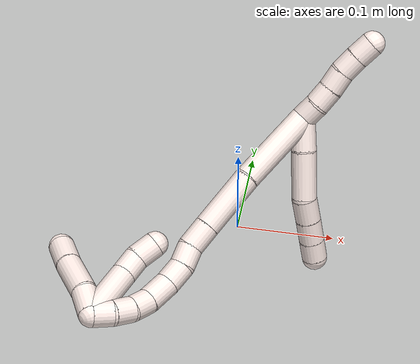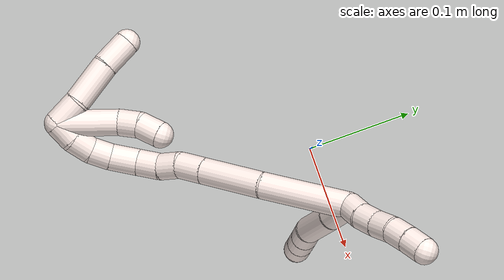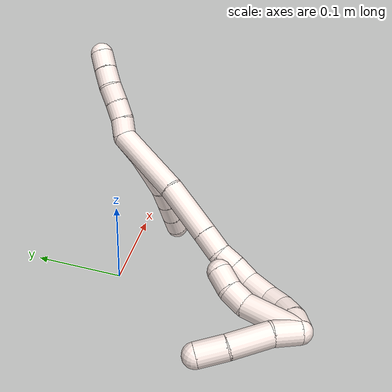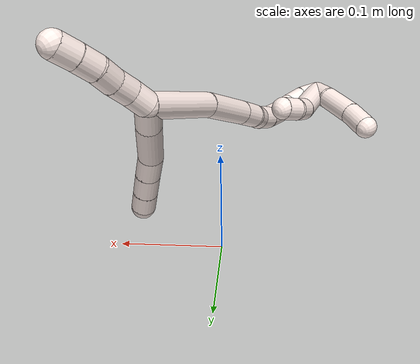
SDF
<sdf version="1.7">
 <world name="default">
  <model name="11">
   <static>0</static>
   <link name="11">
    <collision name="collision-cylinder-e_1_2_8">
     <pose>-0.011091 -0.010823 0.003733 1.2387 -0.769506 -0.562095</pose>
     <geometry><cylinder><radius>0.0125</radius><length>0.03188</length></cylinder></geometry>
     <surface>
      <friction><ode><mu>1.16</mu><mu2>1.16</mu2><slip1>0</slip1><slip2>0</slip2></ode></friction>
      <contact><ode><kp>1e+06</kp><kd>1</kd><max_vel>0</max_vel><min_depth>0.001</min_depth></ode></contact>
     </surface>
    </collision>
    <visual name="visual-cylinder-e_1_2_8">
     <pose>-0.011091 -0.010823 0.003733 1.2387 -0.769506 -0.562095</pose>
     <geometry><cylinder><radius>0.0125</radius><length>0.03188</length></cylinder></geometry>
     <material><ambient>1 0.933333 0.909804 1</ambient></material>
    </visual>
    <collision name="collision-cylinder-e_2_8_9">
     <pose>-0.040822 -0.036573 0.011902 1.28186 -0.874857 -0.671312</pose>
     <geometry><cylinder><radius>0.0125</radius><length>0.048578</length></cylinder></geometry>
     <surface>
      <friction><ode><mu>1.16</mu><mu2>1.16</mu2><slip1>0</slip1><slip2>0</slip2></ode></friction>
      <contact><ode><kp>1e+06</kp><kd>1</kd><max_vel>0</max_vel><min_depth>0.001</min_depth></ode></contact>
     </surface>
    </collision>
    <visual name="visual-cylinder-e_2_8_9">
     <pose>-0.040822 -0.036573 0.011902 1.28186 -0.874857 -0.671312</pose>
     <geometry><cylinder><radius>0.0125</radius><length>0.048578</length></cylinder></geometry>
     <material><ambient>1 0.933333 0.909804 1</ambient></material>
    </visual>
    <collision name="collision-cylinder-e_3_9_10">
     <pose>-0.069499 -0.058673 0.015293 1.71557 -0.945217 -1.06783</pose>
     <geometry><cylinder><radius>0.0125</radius><length>0.024762</length></cylinder></geometry>
     <surface>
      <friction><ode><mu>1.16</mu><mu2>1.16</mu2><slip1>0</slip1><slip2>0</slip2></ode></friction>
      <contact><ode><kp>1e+06</kp><kd>1</kd><max_vel>0</max_vel><min_depth>0.001</min_depth></ode></contact>
     </surface>
    </collision>
    <visual name="visual-cylinder-e_3_9_10">
     <pose>-0.069499 -0.058673 0.015293 1.71557 -0.945217 -1.06783</pose>
     <geometry><cylinder><radius>0.0125</radius><length>0.024762</length></cylinder></geometry>
     <material><ambient>1 0.933333 0.909804 1</ambient></material>
    </visual>
    <collision name="collision-cylinder-e_4_10_11">
     <pose>-0.089376 -0.0726 0.013245 1.71817 -0.964319 -1.09079</pose>
     <geometry><cylinder><radius>0.0125</radius><length>0.023953</length></cylinder></geometry>
     <surface>
      <friction><ode><mu>1.16</mu><mu2>1.16</mu2><slip1>0</slip1><slip2>0</slip2></ode></friction>
      <contact><ode><kp>1e+06</kp><kd>1</kd><max_vel>0</max_vel><min_depth>0.001</min_depth></ode></contact>
     </surface>
    </collision>
    <visual name="visual-cylinder-e_4_10_11">
     <pose>-0.089376 -0.0726 0.013245 1.71817 -0.964319 -1.09079</pose>
     <geometry><cylinder><radius>0.0125</radius><length>0.023953</length></cylinder></geometry>
     <material><ambient>1 0.933333 0.909804 1</ambient></material>
    </visual>
    <collision name="collision-cylinder-e_5_11_6">
     <pose>-0.107767 -0.085237 0.011407 1.71189 -0.963394 -1.08418</pose>
     <geometry><cylinder><radius>0.0125</radius><length>0.020827</length></cylinder></geometry>
     <surface>
      <friction><ode><mu>1.16</mu><mu2>1.16</mu2><slip1>0</slip1><slip2>0</slip2></ode></friction>
      <contact><ode><kp>1e+06</kp><kd>1</kd><max_vel>0</max_vel><min_depth>0.001</min_depth></ode></contact>
     </surface>
    </collision>
    <visual name="visual-cylinder-e_5_11_6">
     <pose>-0.107767 -0.085237 0.011407 1.71189 -0.963394 -1.08418</pose>
     <geometry><cylinder><radius>0.0125</radius><length>0.020827</length></cylinder></geometry>
     <material><ambient>1 0.933333 0.909804 1</ambient></material>
    </visual>
    <collision name="collision-cylinder-e_1_2_12">
     <pose>0.008249 -0.000545 -0.005626 3.04498 0.970026 2.95864</pose>
     <geometry><cylinder><radius>0.0125</radius><length>0.02</length></cylinder></geometry>
     <surface>
      <friction><ode><mu>1.16</mu><mu2>1.16</mu2><slip1>0</slip1><slip2>0</slip2></ode></friction>
      <contact><ode><kp>1e+06</kp><kd>1</kd><max_vel>0</max_vel><min_depth>0.001</min_depth></ode></contact>
     </surface>
    </collision>
    <visual name="visual-cylinder-e_1_2_12">
     <pose>0.008249 -0.000545 -0.005626 3.04498 0.970026 2.95864</pose>
     <geometry><cylinder><radius>0.0125</radius><length>0.02</length></cylinder></geometry>
     <material><ambient>1 0.933333 0.909804 1</ambient></material>
    </visual>
    <collision name="collision-cylinder-e_2_12_13">
     <pose>0.024012 -0.000216 -0.017793 -3.00861 0.850203 -2.84951</pose>
     <geometry><cylinder><radius>0.0125</radius><length>0.02</length></cylinder></geometry>
     <surface>
      <friction><ode><mu>1.16</mu><mu2>1.16</mu2><slip1>0</slip1><slip2>0</slip2></ode></friction>
      <contact><ode><kp>1e+06</kp><kd>1</kd><max_vel>0</max_vel><min_depth>0.001</min_depth></ode></contact>
     </surface>
    </collision>
    <visual name="visual-cylinder-e_2_12_13">
     <pose>0.024012 -0.000216 -0.017793 -3.00861 0.850203 -2.84951</pose>
     <geometry><cylinder><radius>0.0125</radius><length>0.02</length></cylinder></geometry>
     <material><ambient>1 0.933333 0.909804 1</ambient></material>
    </visual>
    <collision name="collision-cylinder-e_3_13_14">
     <pose>0.039323 0.002449 -0.030334 -2.8518 0.894096 -2.55067</pose>
     <geometry><cylinder><radius>0.0125</radius><length>0.02</length></cylinder></geometry>
     <surface>
      <friction><ode><mu>1.16</mu><mu2>1.16</mu2><slip1>0</slip1><slip2>0</slip2></ode></friction>
      <contact><ode><kp>1e+06</kp><kd>1</kd><max_vel>0</max_vel><min_depth>0.001</min_depth></ode></contact>
     </surface>
    </collision>
    <visual name="visual-cylinder-e_3_13_14">
     <pose>0.039323 0.002449 -0.030334 -2.8518 0.894096 -2.55067</pose>
     <geometry><cylinder><radius>0.0125</radius><length>0.02</length></cylinder></geometry>
     <material><ambient>1 0.933333 0.909804 1</ambient></material>
    </visual>
    <collision name="collision-cylinder-e_4_14_15">
     <pose>0.054612 0.004351 -0.042956 -3.12451 0.847023 -3.10369</pose>
     <geometry><cylinder><radius>0.0125</radius><length>0.02</length></cylinder></geometry>
     <surface>
      <friction><ode><mu>1.16</mu><mu2>1.16</mu2><slip1>0</slip1><slip2>0</slip2></ode></friction>
      <contact><ode><kp>1e+06</kp><kd>1</kd><max_vel>0</max_vel><min_depth>0.001</min_depth></ode></contact>
     </surface>
    </collision>
    <visual name="visual-cylinder-e_4_14_15">
     <pose>0.054612 0.004351 -0.042956 -3.12451 0.847023 -3.10369</pose>
     <geometry><cylinder><radius>0.0125</radius><length>0.02</length></cylinder></geometry>
     <material><ambient>1 0.933333 0.909804 1</ambient></material>
    </visual>
    <collision name="collision-cylinder-e_5_15_5">
     <pose>0.069467 0.004017 -0.056331 3.07549 0.827369 2.99125</pose>
     <geometry><cylinder><radius>0.0125</radius><length>0.02</length></cylinder></geometry>
     <surface>
      <friction><ode><mu>1.16</mu><mu2>1.16</mu2><slip1>0</slip1><slip2>0</slip2></ode></friction>
      <contact><ode><kp>1e+06</kp><kd>1</kd><max_vel>0</max_vel><min_depth>0.001</min_depth></ode></contact>
     </surface>
    </collision>
    <visual name="visual-cylinder-e_5_15_5">
     <pose>0.069467 0.004017 -0.056331 3.07549 0.827369 2.99125</pose>
     <geometry><cylinder><radius>0.0125</radius><length>0.02</length></cylinder></geometry>
     <material><ambient>1 0.933333 0.909804 1</ambient></material>
    </visual>
    <collision name="collision-cylinder-e_1_2_16">
     <pose>-0.015906 -0.007923 0.038048 0.205301 -0.388483 -0.040524</pose>
     <geometry><cylinder><radius>0.0125</radius><length>0.083986</length></cylinder></geometry>
     <surface>
      <friction><ode><mu>1.16</mu><mu2>1.16</mu2><slip1>0</slip1><slip2>0</slip2></ode></friction>
      <contact><ode><kp>1e+06</kp><kd>1</kd><max_vel>0</max_vel><min_depth>0.001</min_depth></ode></contact>
     </surface>
    </collision>
    <visual name="visual-cylinder-e_1_2_16">
     <pose>-0.015906 -0.007923 0.038048 0.205301 -0.388483 -0.040524</pose>
     <geometry><cylinder><radius>0.0125</radius><length>0.083986</length></cylinder></geometry>
     <material><ambient>1 0.933333 0.909804 1</ambient></material>
    </visual>
    <collision name="collision-cylinder-e_2_16_17">
     <pose>-0.046976 -0.022102 0.101515 0.241338 -0.525026 -0.065144</pose>
     <geometry><cylinder><radius>0.0125</radius><length>0.060505</length></cylinder></geometry>
     <surface>
      <friction><ode><mu>1.16</mu><mu2>1.16</mu2><slip1>0</slip1><slip2>0</slip2></ode></friction>
      <contact><ode><kp>1e+06</kp><kd>1</kd><max_vel>0</max_vel><min_depth>0.001</min_depth></ode></contact>
     </surface>
    </collision>
    <visual name="visual-cylinder-e_2_16_17">
     <pose>-0.046976 -0.022102 0.101515 0.241338 -0.525026 -0.065144</pose>
     <geometry><cylinder><radius>0.0125</radius><length>0.060505</length></cylinder></geometry>
     <material><ambient>1 0.933333 0.909804 1</ambient></material>
    </visual>
    <collision name="collision-cylinder-e_3_17_18">
     <pose>-0.068783 -0.031047 0.137583 0.247273 -0.543972 -0.06929</pose>
     <geometry><cylinder><radius>0.0125</radius><length>0.025671</length></cylinder></geometry>
     <surface>
      <friction><ode><mu>1.16</mu><mu2>1.16</mu2><slip1>0</slip1><slip2>0</slip2></ode></friction>
      <contact><ode><kp>1e+06</kp><kd>1</kd><max_vel>0</max_vel><min_depth>0.001</min_depth></ode></contact>
     </surface>
    </collision>
    <visual name="visual-cylinder-e_3_17_18">
     <pose>-0.068783 -0.031047 0.137583 0.247273 -0.543972 -0.06929</pose>
     <geometry><cylinder><radius>0.0125</radius><length>0.025671</length></cylinder></geometry>
     <material><ambient>1 0.933333 0.909804 1</ambient></material>
    </visual>
    <collision name="collision-cylinder-e_4_18_19">
     <pose>-0.079877 -0.038647 0.155944 0.567038 -0.452987 -0.134089</pose>
     <geometry><cylinder><radius>0.0125</radius><length>0.02034</length></cylinder></geometry>
     <surface>
      <friction><ode><mu>1.16</mu><mu2>1.16</mu2><slip1>0</slip1><slip2>0</slip2></ode></friction>
      <contact><ode><kp>1e+06</kp><kd>1</kd><max_vel>0</max_vel><min_depth>0.001</min_depth></ode></contact>
     </surface>
    </collision>
    <visual name="visual-cylinder-e_4_18_19">
     <pose>-0.079877 -0.038647 0.155944 0.567038 -0.452987 -0.134089</pose>
     <geometry><cylinder><radius>0.0125</radius><length>0.02034</length></cylinder></geometry>
     <material><ambient>1 0.933333 0.909804 1</ambient></material>
    </visual>
    <collision name="collision-cylinder-e_5_19_20">
     <pose>-0.088612 -0.046062 0.173526 0.248451 -0.398342 -0.050398</pose>
     <geometry><cylinder><radius>0.0125</radius><length>0.022092</length></cylinder></geometry>
     <surface>
      <friction><ode><mu>1.16</mu><mu2>1.16</mu2><slip1>0</slip1><slip2>0</slip2></ode></friction>
      <contact><ode><kp>1e+06</kp><kd>1</kd><max_vel>0</max_vel><min_depth>0.001</min_depth></ode></contact>
     </surface>
    </collision>
    <visual name="visual-cylinder-e_5_19_20">
     <pose>-0.088612 -0.046062 0.173526 0.248451 -0.398342 -0.050398</pose>
     <geometry><cylinder><radius>0.0125</radius><length>0.022092</length></cylinder></geometry>
     <material><ambient>1 0.933333 0.909804 1</ambient></material>
    </visual>
    <collision name="collision-cylinder-e_6_20_21">
     <pose>-0.095051 -0.050747 0.196587 0.163818 -0.159724 -0.01314</pose>
     <geometry><cylinder><radius>0.0125</radius><length>0.027088</length></cylinder></geometry>
     <surface>
      <friction><ode><mu>1.16</mu><mu2>1.16</mu2><slip1>0</slip1><slip2>0</slip2></ode></friction>
      <contact><ode><kp>1e+06</kp><kd>1</kd><max_vel>0</max_vel><min_depth>0.001</min_depth></ode></contact>
     </surface>
    </collision>
    <visual name="visual-cylinder-e_6_20_21">
     <pose>-0.095051 -0.050747 0.196587 0.163818 -0.159724 -0.01314</pose>
     <geometry><cylinder><radius>0.0125</radius><length>0.027088</length></cylinder></geometry>
     <material><ambient>1 0.933333 0.909804 1</ambient></material>
    </visual>
    <collision name="collision-cylinder-e_7_21_22">
     <pose>-0.096975 -0.052685 0.219811 -0.024103 0.022877 -0.000276</pose>
     <geometry><cylinder><radius>0.0125</radius><length>0.020073</length></cylinder></geometry>
     <surface>
      <friction><ode><mu>1.16</mu><mu2>1.16</mu2><slip1>0</slip1><slip2>0</slip2></ode></friction>
      <contact><ode><kp>1e+06</kp><kd>1</kd><max_vel>0</max_vel><min_depth>0.001</min_depth></ode></contact>
     </surface>
    </collision>
    <visual name="visual-cylinder-e_7_21_22">
     <pose>-0.096975 -0.052685 0.219811 -0.024103 0.022877 -0.000276</pose>
     <geometry><cylinder><radius>0.0125</radius><length>0.020073</length></cylinder></geometry>
     <material><ambient>1 0.933333 0.909804 1</ambient></material>
    </visual>
    <collision name="collision-cylinder-e_8_22_23">
     <pose>-0.096245 -0.049745 0.239478 -0.273072 0.050033 -0.006875</pose>
     <geometry><cylinder><radius>0.0125</radius><length>0.020039</length></cylinder></geometry>
     <surface>
      <friction><ode><mu>1.16</mu><mu2>1.16</mu2><slip1>0</slip1><slip2>0</slip2></ode></friction>
      <contact><ode><kp>1e+06</kp><kd>1</kd><max_vel>0</max_vel><min_depth>0.001</min_depth></ode></contact>
     </surface>
    </collision>
    <visual name="visual-cylinder-e_8_22_23">
     <pose>-0.096245 -0.049745 0.239478 -0.273072 0.050033 -0.006875</pose>
     <geometry><cylinder><radius>0.0125</radius><length>0.020039</length></cylinder></geometry>
     <material><ambient>1 0.933333 0.909804 1</ambient></material>
    </visual>
    <collision name="collision-cylinder-e_9_23_1">
     <pose>-0.096507 -0.042196 0.257944 -0.502315 -0.075684 0.019427</pose>
     <geometry><cylinder><radius>0.0125</radius><length>0.020206</length></cylinder></geometry>
     <surface>
      <friction><ode><mu>1.16</mu><mu2>1.16</mu2><slip1>0</slip1><slip2>0</slip2></ode></friction>
      <contact><ode><kp>1e+06</kp><kd>1</kd><max_vel>0</max_vel><min_depth>0.001</min_depth></ode></contact>
     </surface>
    </collision>
    <visual name="visual-cylinder-e_9_23_1">
     <pose>-0.096507 -0.042196 0.257944 -0.502315 -0.075684 0.019427</pose>
     <geometry><cylinder><radius>0.0125</radius><length>0.020206</length></cylinder></geometry>
     <material><ambient>1 0.933333 0.909804 1</ambient></material>
    </visual>
    <collision name="collision-cylinder-e_1_1_24">
     <pose>-0.099259 -0.025275 0.261074 -2.01196 -0.147848 0.232687</pose>
     <geometry><cylinder><radius>0.0125</radius><length>0.026992</length></cylinder></geometry>
     <surface>
      <friction><ode><mu>1.16</mu><mu2>1.16</mu2><slip1>0</slip1><slip2>0</slip2></ode></friction>
      <contact><ode><kp>1e+06</kp><kd>1</kd><max_vel>0</max_vel><min_depth>0.001</min_depth></ode></contact>
     </surface>
    </collision>
    <visual name="visual-cylinder-e_1_1_24">
     <pose>-0.099259 -0.025275 0.261074 -2.01196 -0.147848 0.232687</pose>
     <geometry><cylinder><radius>0.0125</radius><length>0.026992</length></cylinder></geometry>
     <material><ambient>1 0.933333 0.909804 1</ambient></material>
    </visual>
    <collision name="collision-cylinder-e_2_24_25">
     <pose>-0.10856 0.005611 0.248042 -1.94235 -0.347434 0.502579</pose>
     <geometry><cylinder><radius>0.0125</radius><length>0.042953</length></cylinder></geometry>
     <surface>
      <friction><ode><mu>1.16</mu><mu2>1.16</mu2><slip1>0</slip1><slip2>0</slip2></ode></friction>
      <contact><ode><kp>1e+06</kp><kd>1</kd><max_vel>0</max_vel><min_depth>0.001</min_depth></ode></contact>
     </surface>
    </collision>
    <visual name="visual-cylinder-e_2_24_25">
     <pose>-0.10856 0.005611 0.248042 -1.94235 -0.347434 0.502579</pose>
     <geometry><cylinder><radius>0.0125</radius><length>0.042953</length></cylinder></geometry>
     <material><ambient>1 0.933333 0.909804 1</ambient></material>
    </visual>
    <collision name="collision-cylinder-e_3_25_4">
     <pose>-0.121346 0.036758 0.234094 -2.0633 -0.372814 0.610751</pose>
     <geometry><cylinder><radius>0.0125</radius><length>0.030055</length></cylinder></geometry>
     <surface>
      <friction><ode><mu>1.16</mu><mu2>1.16</mu2><slip1>0</slip1><slip2>0</slip2></ode></friction>
      <contact><ode><kp>1e+06</kp><kd>1</kd><max_vel>0</max_vel><min_depth>0.001</min_depth></ode></contact>
     </surface>
    </collision>
    <visual name="visual-cylinder-e_3_25_4">
     <pose>-0.121346 0.036758 0.234094 -2.0633 -0.372814 0.610751</pose>
     <geometry><cylinder><radius>0.0125</radius><length>0.030055</length></cylinder></geometry>
     <material><ambient>1 0.933333 0.909804 1</ambient></material>
    </visual>
    <collision name="collision-cylinder-e_1_1_26">
     <pose>-0.096775 -0.027726 0.239704 -2.80012 0.017261 -0.100032</pose>
     <geometry><cylinder><radius>0.0125</radius><length>0.057464</length></cylinder></geometry>
     <surface>
      <friction><ode><mu>1.16</mu><mu2>1.16</mu2><slip1>0</slip1><slip2>0</slip2></ode></friction>
      <contact><ode><kp>1e+06</kp><kd>1</kd><max_vel>0</max_vel><min_depth>0.001</min_depth></ode></contact>
     </surface>
    </collision>
    <visual name="visual-cylinder-e_1_1_26">
     <pose>-0.096775 -0.027726 0.239704 -2.80012 0.017261 -0.100032</pose>
     <geometry><cylinder><radius>0.0125</radius><length>0.057464</length></cylinder></geometry>
     <material><ambient>1 0.933333 0.909804 1</ambient></material>
    </visual>
    <collision name="collision-cylinder-e_2_26_27">
     <pose>-0.092578 -0.015257 0.203324 -2.84474 0.36327 -1.77496</pose>
     <geometry><cylinder><radius>0.0125</radius><length>0.020835</length></cylinder></geometry>
     <surface>
      <friction><ode><mu>1.16</mu><mu2>1.16</mu2><slip1>0</slip1><slip2>0</slip2></ode></friction>
      <contact><ode><kp>1e+06</kp><kd>1</kd><max_vel>0</max_vel><min_depth>0.001</min_depth></ode></contact>
     </surface>
    </collision>
    <visual name="visual-cylinder-e_2_26_27">
     <pose>-0.092578 -0.015257 0.203324 -2.84474 0.36327 -1.77496</pose>
     <geometry><cylinder><radius>0.0125</radius><length>0.020835</length></cylinder></geometry>
     <material><ambient>1 0.933333 0.909804 1</ambient></material>
    </visual>
    <collision name="collision-cylinder-e_3_27_3">
     <pose>-0.084084 -0.012599 0.184279 3.12204 0.457436 3.05764</pose>
     <geometry><cylinder><radius>0.0125</radius><length>0.021701</length></cylinder></geometry>
     <surface>
      <friction><ode><mu>1.16</mu><mu2>1.16</mu2><slip1>0</slip1><slip2>0</slip2></ode></friction>
      <contact><ode><kp>1e+06</kp><kd>1</kd><max_vel>0</max_vel><min_depth>0.001</min_depth></ode></contact>
     </surface>
    </collision>
    <visual name="visual-cylinder-e_3_27_3">
     <pose>-0.084084 -0.012599 0.184279 3.12204 0.457436 3.05764</pose>
     <geometry><cylinder><radius>0.0125</radius><length>0.021701</length></cylinder></geometry>
     <material><ambient>1 0.933333 0.909804 1</ambient></material>
    </visual>
    <collision name="collision-sphere-3">
     <pose>-0.079292 -0.012789 0.174546 0 -0 0</pose>
     <geometry><sphere><radius>0.0125</radius></sphere></geometry>
     <surface>
      <friction><ode><mu>1.16</mu><mu2>1.16</mu2><slip1>0</slip1><slip2>0</slip2></ode></friction>
      <contact><ode><kp>1e+06</kp><kd>1</kd><max_vel>0</max_vel><min_depth>0.001</min_depth></ode></contact>
     </surface>
    </collision>
    <visual name="visual-sphere-3">
     <pose>-0.079292 -0.012789 0.174546 0 -0 0</pose>
     <geometry><sphere><radius>0.0125</radius></sphere></geometry>
     <material><ambient>1 0.933333 0.909804 1</ambient></material>
    </visual>
    <collision name="collision-sphere-27">
     <pose>-0.088876 -0.012409 0.194012 0 -0 0</pose>
     <geometry><sphere><radius>0.0125</radius></sphere></geometry>
     <surface>
      <friction><ode><mu>1.16</mu><mu2>1.16</mu2><slip1>0</slip1><slip2>0</slip2></ode></friction>
      <contact><ode><kp>1e+06</kp><kd>1</kd><max_vel>0</max_vel><min_depth>0.001</min_depth></ode></contact>
     </surface>
    </collision>
    <visual name="visual-sphere-27">
     <pose>-0.088876 -0.012409 0.194012 0 -0 0</pose>
     <geometry><sphere><radius>0.0125</radius></sphere></geometry>
     <material><ambient>1 0.933333 0.909804 1</ambient></material>
    </visual>
    <collision name="collision-sphere-26">
     <pose>-0.09628 -0.018105 0.212635 0 -0 0</pose>
     <geometry><sphere><radius>0.0125</radius></sphere></geometry>
     <surface>
      <friction><ode><mu>1.16</mu><mu2>1.16</mu2><slip1>0</slip1><slip2>0</slip2></ode></friction>
      <contact><ode><kp>1e+06</kp><kd>1</kd><max_vel>0</max_vel><min_depth>0.001</min_depth></ode></contact>
     </surface>
    </collision>
    <visual name="visual-sphere-26">
     <pose>-0.09628 -0.018105 0.212635 0 -0 0</pose>
     <geometry><sphere><radius>0.0125</radius></sphere></geometry>
     <material><ambient>1 0.933333 0.909804 1</ambient></material>
    </visual>
    <collision name="collision-sphere-4">
     <pose>-0.12682 0.04909 0.227476 0 -0 0</pose>
     <geometry><sphere><radius>0.0125</radius></sphere></geometry>
     <surface>
      <friction><ode><mu>1.16</mu><mu2>1.16</mu2><slip1>0</slip1><slip2>0</slip2></ode></friction>
      <contact><ode><kp>1e+06</kp><kd>1</kd><max_vel>0</max_vel><min_depth>0.001</min_depth></ode></contact>
     </surface>
    </collision>
    <visual name="visual-sphere-4">
     <pose>-0.12682 0.04909 0.227476 0 -0 0</pose>
     <geometry><sphere><radius>0.0125</radius></sphere></geometry>
     <material><ambient>1 0.933333 0.909804 1</ambient></material>
    </visual>
    <collision name="collision-sphere-25">
     <pose>-0.115872 0.024426 0.240711 0 -0 0</pose>
     <geometry><sphere><radius>0.0125</radius></sphere></geometry>
     <surface>
      <friction><ode><mu>1.16</mu><mu2>1.16</mu2><slip1>0</slip1><slip2>0</slip2></ode></friction>
      <contact><ode><kp>1e+06</kp><kd>1</kd><max_vel>0</max_vel><min_depth>0.001</min_depth></ode></contact>
     </surface>
    </collision>
    <visual name="visual-sphere-25">
     <pose>-0.115872 0.024426 0.240711 0 -0 0</pose>
     <geometry><sphere><radius>0.0125</radius></sphere></geometry>
     <material><ambient>1 0.933333 0.909804 1</ambient></material>
    </visual>
    <collision name="collision-sphere-24">
     <pose>-0.101248 -0.013205 0.255374 0 -0 0</pose>
     <geometry><sphere><radius>0.0125</radius></sphere></geometry>
     <surface>
      <friction><ode><mu>1.16</mu><mu2>1.16</mu2><slip1>0</slip1><slip2>0</slip2></ode></friction>
      <contact><ode><kp>1e+06</kp><kd>1</kd><max_vel>0</max_vel><min_depth>0.001</min_depth></ode></contact>
     </surface>
    </collision>
    <visual name="visual-sphere-24">
     <pose>-0.101248 -0.013205 0.255374 0 -0 0</pose>
     <geometry><sphere><radius>0.0125</radius></sphere></geometry>
     <material><ambient>1 0.933333 0.909804 1</ambient></material>
    </visual>
    <collision name="collision-sphere-1">
     <pose>-0.097271 -0.037346 0.266773 0 -0 0</pose>
     <geometry><sphere><radius>0.0125</radius></sphere></geometry>
     <surface>
      <friction><ode><mu>1.16</mu><mu2>1.16</mu2><slip1>0</slip1><slip2>0</slip2></ode></friction>
      <contact><ode><kp>1e+06</kp><kd>1</kd><max_vel>0</max_vel><min_depth>0.001</min_depth></ode></contact>
     </surface>
    </collision>
    <visual name="visual-sphere-1">
     <pose>-0.097271 -0.037346 0.266773 0 -0 0</pose>
     <geometry><sphere><radius>0.0125</radius></sphere></geometry>
     <material><ambient>1 0.933333 0.909804 1</ambient></material>
    </visual>
    <collision name="collision-sphere-23">
     <pose>-0.095744 -0.047046 0.249115 0 -0 0</pose>
     <geometry><sphere><radius>0.0125</radius></sphere></geometry>
     <surface>
      <friction><ode><mu>1.16</mu><mu2>1.16</mu2><slip1>0</slip1><slip2>0</slip2></ode></friction>
      <contact><ode><kp>1e+06</kp><kd>1</kd><max_vel>0</max_vel><min_depth>0.001</min_depth></ode></contact>
     </surface>
    </collision>
    <visual name="visual-sphere-23">
     <pose>-0.095744 -0.047046 0.249115 0 -0 0</pose>
     <geometry><sphere><radius>0.0125</radius></sphere></geometry>
     <material><ambient>1 0.933333 0.909804 1</ambient></material>
    </visual>
    <collision name="collision-sphere-22">
     <pose>-0.096746 -0.052444 0.229842 0 -0 0</pose>
     <geometry><sphere><radius>0.0125</radius></sphere></geometry>
     <surface>
      <friction><ode><mu>1.16</mu><mu2>1.16</mu2><slip1>0</slip1><slip2>0</slip2></ode></friction>
      <contact><ode><kp>1e+06</kp><kd>1</kd><max_vel>0</max_vel><min_depth>0.001</min_depth></ode></contact>
     </surface>
    </collision>
    <visual name="visual-sphere-22">
     <pose>-0.096746 -0.052444 0.229842 0 -0 0</pose>
     <geometry><sphere><radius>0.0125</radius></sphere></geometry>
     <material><ambient>1 0.933333 0.909804 1</ambient></material>
    </visual>
    <collision name="collision-sphere-21">
     <pose>-0.097205 -0.052927 0.20978 0 -0 0</pose>
     <geometry><sphere><radius>0.0125</radius></sphere></geometry>
     <surface>
      <friction><ode><mu>1.16</mu><mu2>1.16</mu2><slip1>0</slip1><slip2>0</slip2></ode></friction>
      <contact><ode><kp>1e+06</kp><kd>1</kd><max_vel>0</max_vel><min_depth>0.001</min_depth></ode></contact>
     </surface>
    </collision>
    <visual name="visual-sphere-21">
     <pose>-0.097205 -0.052927 0.20978 0 -0 0</pose>
     <geometry><sphere><radius>0.0125</radius></sphere></geometry>
     <material><ambient>1 0.933333 0.909804 1</ambient></material>
    </visual>
    <collision name="collision-sphere-6">
     <pose>-0.116318 -0.091121 0.010571 0 -0 0</pose>
     <geometry><sphere><radius>0.0125</radius></sphere></geometry>
     <surface>
      <friction><ode><mu>1.16</mu><mu2>1.16</mu2><slip1>0</slip1><slip2>0</slip2></ode></friction>
      <contact><ode><kp>1e+06</kp><kd>1</kd><max_vel>0</max_vel><min_depth>0.001</min_depth></ode></contact>
     </surface>
    </collision>
    <visual name="visual-sphere-6">
     <pose>-0.116318 -0.091121 0.010571 0 -0 0</pose>
     <geometry><sphere><radius>0.0125</radius></sphere></geometry>
     <material><ambient>1 0.933333 0.909804 1</ambient></material>
    </visual>
    <collision name="collision-sphere-11">
     <pose>-0.099216 -0.079352 0.012243 0 -0 0</pose>
     <geometry><sphere><radius>0.0125</radius></sphere></geometry>
     <surface>
      <friction><ode><mu>1.16</mu><mu2>1.16</mu2><slip1>0</slip1><slip2>0</slip2></ode></friction>
      <contact><ode><kp>1e+06</kp><kd>1</kd><max_vel>0</max_vel><min_depth>0.001</min_depth></ode></contact>
     </surface>
    </collision>
    <visual name="visual-sphere-11">
     <pose>-0.099216 -0.079352 0.012243 0 -0 0</pose>
     <geometry><sphere><radius>0.0125</radius></sphere></geometry>
     <material><ambient>1 0.933333 0.909804 1</ambient></material>
    </visual>
    <collision name="collision-sphere-10">
     <pose>-0.079535 -0.065848 0.014247 0 -0 0</pose>
     <geometry><sphere><radius>0.0125</radius></sphere></geometry>
     <surface>
      <friction><ode><mu>1.16</mu><mu2>1.16</mu2><slip1>0</slip1><slip2>0</slip2></ode></friction>
      <contact><ode><kp>1e+06</kp><kd>1</kd><max_vel>0</max_vel><min_depth>0.001</min_depth></ode></contact>
     </surface>
    </collision>
    <visual name="visual-sphere-10">
     <pose>-0.079535 -0.065848 0.014247 0 -0 0</pose>
     <geometry><sphere><radius>0.0125</radius></sphere></geometry>
     <material><ambient>1 0.933333 0.909804 1</ambient></material>
    </visual>
    <collision name="collision-sphere-9">
     <pose>-0.059463 -0.051499 0.016339 0 -0 0</pose>
     <geometry><sphere><radius>0.0125</radius></sphere></geometry>
     <surface>
      <friction><ode><mu>1.16</mu><mu2>1.16</mu2><slip1>0</slip1><slip2>0</slip2></ode></friction>
      <contact><ode><kp>1e+06</kp><kd>1</kd><max_vel>0</max_vel><min_depth>0.001</min_depth></ode></contact>
     </surface>
    </collision>
    <visual name="visual-sphere-9">
     <pose>-0.059463 -0.051499 0.016339 0 -0 0</pose>
     <geometry><sphere><radius>0.0125</radius></sphere></geometry>
     <material><ambient>1 0.933333 0.909804 1</ambient></material>
    </visual>
    <collision name="collision-sphere-2">
     <geometry><sphere><radius>0.0125</radius></sphere></geometry>
     <surface>
      <friction><ode><mu>1.16</mu><mu2>1.16</mu2><slip1>0</slip1><slip2>0</slip2></ode></friction>
      <contact><ode><kp>1e+06</kp><kd>1</kd><max_vel>0</max_vel><min_depth>0.001</min_depth></ode></contact>
     </surface>
    </collision>
    <visual name="visual-sphere-2">
     <geometry><sphere><radius>0.0125</radius></sphere></geometry>
     <material><ambient>1 0.933333 0.909804 1</ambient></material>
    </visual>
    <collision name="collision-sphere-19">
     <pose>-0.084328 -0.043559 0.163658 0 -0 0</pose>
     <geometry><sphere><radius>0.0125</radius></sphere></geometry>
     <surface>
      <friction><ode><mu>1.16</mu><mu2>1.16</mu2><slip1>0</slip1><slip2>0</slip2></ode></friction>
      <contact><ode><kp>1e+06</kp><kd>1</kd><max_vel>0</max_vel><min_depth>0.001</min_depth></ode></contact>
     </surface>
    </collision>
    <visual name="visual-sphere-19">
     <pose>-0.084328 -0.043559 0.163658 0 -0 0</pose>
     <geometry><sphere><radius>0.0125</radius></sphere></geometry>
     <material><ambient>1 0.933333 0.909804 1</ambient></material>
    </visual>
    <collision name="collision-sphere-8">
     <pose>-0.022182 -0.021647 0.007465 0 -0 0</pose>
     <geometry><sphere><radius>0.0125</radius></sphere></geometry>
     <surface>
      <friction><ode><mu>1.16</mu><mu2>1.16</mu2><slip1>0</slip1><slip2>0</slip2></ode></friction>
      <contact><ode><kp>1e+06</kp><kd>1</kd><max_vel>0</max_vel><min_depth>0.001</min_depth></ode></contact>
     </surface>
    </collision>
    <visual name="visual-sphere-8">
     <pose>-0.022182 -0.021647 0.007465 0 -0 0</pose>
     <geometry><sphere><radius>0.0125</radius></sphere></geometry>
     <material><ambient>1 0.933333 0.909804 1</ambient></material>
    </visual>
    <collision name="collision-sphere-12">
     <pose>0.016498 -0.001091 -0.011253 0 -0 0</pose>
     <geometry><sphere><radius>0.0125</radius></sphere></geometry>
     <surface>
      <friction><ode><mu>1.16</mu><mu2>1.16</mu2><slip1>0</slip1><slip2>0</slip2></ode></friction>
      <contact><ode><kp>1e+06</kp><kd>1</kd><max_vel>0</max_vel><min_depth>0.001</min_depth></ode></contact>
     </surface>
    </collision>
    <visual name="visual-sphere-12">
     <pose>0.016498 -0.001091 -0.011253 0 -0 0</pose>
     <geometry><sphere><radius>0.0125</radius></sphere></geometry>
     <material><ambient>1 0.933333 0.909804 1</ambient></material>
    </visual>
    <collision name="collision-sphere-13">
     <pose>0.031526 0.000659 -0.024333 0 -0 0</pose>
     <geometry><sphere><radius>0.0125</radius></sphere></geometry>
     <surface>
      <friction><ode><mu>1.16</mu><mu2>1.16</mu2><slip1>0</slip1><slip2>0</slip2></ode></friction>
      <contact><ode><kp>1e+06</kp><kd>1</kd><max_vel>0</max_vel><min_depth>0.001</min_depth></ode></contact>
     </surface>
    </collision>
    <visual name="visual-sphere-13">
     <pose>0.031526 0.000659 -0.024333 0 -0 0</pose>
     <geometry><sphere><radius>0.0125</radius></sphere></geometry>
     <material><ambient>1 0.933333 0.909804 1</ambient></material>
    </visual>
    <collision name="collision-sphere-14">
     <pose>0.047119 0.004238 -0.036335 0 -0 0</pose>
     <geometry><sphere><radius>0.0125</radius></sphere></geometry>
     <surface>
      <friction><ode><mu>1.16</mu><mu2>1.16</mu2><slip1>0</slip1><slip2>0</slip2></ode></friction>
      <contact><ode><kp>1e+06</kp><kd>1</kd><max_vel>0</max_vel><min_depth>0.001</min_depth></ode></contact>
     </surface>
    </collision>
    <visual name="visual-sphere-14">
     <pose>0.047119 0.004238 -0.036335 0 -0 0</pose>
     <geometry><sphere><radius>0.0125</radius></sphere></geometry>
     <material><ambient>1 0.933333 0.909804 1</ambient></material>
    </visual>
    <collision name="collision-sphere-15">
     <pose>0.062105 0.004464 -0.049578 0 -0 0</pose>
     <geometry><sphere><radius>0.0125</radius></sphere></geometry>
     <surface>
      <friction><ode><mu>1.16</mu><mu2>1.16</mu2><slip1>0</slip1><slip2>0</slip2></ode></friction>
      <contact><ode><kp>1e+06</kp><kd>1</kd><max_vel>0</max_vel><min_depth>0.001</min_depth></ode></contact>
     </surface>
    </collision>
    <visual name="visual-sphere-15">
     <pose>0.062105 0.004464 -0.049578 0 -0 0</pose>
     <geometry><sphere><radius>0.0125</radius></sphere></geometry>
     <material><ambient>1 0.933333 0.909804 1</ambient></material>
    </visual>
    <collision name="collision-sphere-5">
     <pose>0.076828 0.00357 -0.063084 0 -0 0</pose>
     <geometry><sphere><radius>0.0125</radius></sphere></geometry>
     <surface>
      <friction><ode><mu>1.16</mu><mu2>1.16</mu2><slip1>0</slip1><slip2>0</slip2></ode></friction>
      <contact><ode><kp>1e+06</kp><kd>1</kd><max_vel>0</max_vel><min_depth>0.001</min_depth></ode></contact>
     </surface>
    </collision>
    <visual name="visual-sphere-5">
     <pose>0.076828 0.00357 -0.063084 0 -0 0</pose>
     <geometry><sphere><radius>0.0125</radius></sphere></geometry>
     <material><ambient>1 0.933333 0.909804 1</ambient></material>
    </visual>
    <collision name="collision-sphere-16">
     <pose>-0.031813 -0.015846 0.076095 0 -0 0</pose>
     <geometry><sphere><radius>0.0125</radius></sphere></geometry>
     <surface>
      <friction><ode><mu>1.16</mu><mu2>1.16</mu2><slip1>0</slip1><slip2>0</slip2></ode></friction>
      <contact><ode><kp>1e+06</kp><kd>1</kd><max_vel>0</max_vel><min_depth>0.001</min_depth></ode></contact>
     </surface>
    </collision>
    <visual name="visual-sphere-16">
     <pose>-0.031813 -0.015846 0.076095 0 -0 0</pose>
     <geometry><sphere><radius>0.0125</radius></sphere></geometry>
     <material><ambient>1 0.933333 0.909804 1</ambient></material>
    </visual>
    <collision name="collision-sphere-17">
     <pose>-0.06214 -0.028359 0.126934 0 -0 0</pose>
     <geometry><sphere><radius>0.0125</radius></sphere></geometry>
     <surface>
      <friction><ode><mu>1.16</mu><mu2>1.16</mu2><slip1>0</slip1><slip2>0</slip2></ode></friction>
      <contact><ode><kp>1e+06</kp><kd>1</kd><max_vel>0</max_vel><min_depth>0.001</min_depth></ode></contact>
     </surface>
    </collision>
    <visual name="visual-sphere-17">
     <pose>-0.06214 -0.028359 0.126934 0 -0 0</pose>
     <geometry><sphere><radius>0.0125</radius></sphere></geometry>
     <material><ambient>1 0.933333 0.909804 1</ambient></material>
    </visual>
    <collision name="collision-sphere-18">
     <pose>-0.075426 -0.033735 0.148231 0 -0 0</pose>
     <geometry><sphere><radius>0.0125</radius></sphere></geometry>
     <surface>
      <friction><ode><mu>1.16</mu><mu2>1.16</mu2><slip1>0</slip1><slip2>0</slip2></ode></friction>
      <contact><ode><kp>1e+06</kp><kd>1</kd><max_vel>0</max_vel><min_depth>0.001</min_depth></ode></contact>
     </surface>
    </collision>
    <visual name="visual-sphere-18">
     <pose>-0.075426 -0.033735 0.148231 0 -0 0</pose>
     <geometry><sphere><radius>0.0125</radius></sphere></geometry>
     <material><ambient>1 0.933333 0.909804 1</ambient></material>
    </visual>
    <collision name="collision-sphere-20">
     <pose>-0.092897 -0.048566 0.183394 0 -0 0</pose>
     <geometry><sphere><radius>0.0125</radius></sphere></geometry>
     <surface>
      <friction><ode><mu>1.16</mu><mu2>1.16</mu2><slip1>0</slip1><slip2>0</slip2></ode></friction>
      <contact><ode><kp>1e+06</kp><kd>1</kd><max_vel>0</max_vel><min_depth>0.001</min_depth></ode></contact>
     </surface>
    </collision>
    <visual name="visual-sphere-20">
     <pose>-0.092897 -0.048566 0.183394 0 -0 0</pose>
     <geometry><sphere><radius>0.0125</radius></sphere></geometry>
     <material><ambient>1 0.933333 0.909804 1</ambient></material>
    </visual>
    <inertial>
     <pose>-0.057013 -0.023058 0.113253 0 -0 0</pose>
     <mass>0.75</mass>
     <inertia><ixx>9.1e-05</ixx><ixy>0</ixy><ixz>0</ixz><iyy>7.6e-05</iyy><iyz>0</iyz><izz>6.3e-05</izz></inertia>
    </inertial>
   </link>
   <pose>0.061155 0.011171 0.152345 1.12026 -1.24716 -0.219573</pose>
  </model>
 </world>
</sdf>
